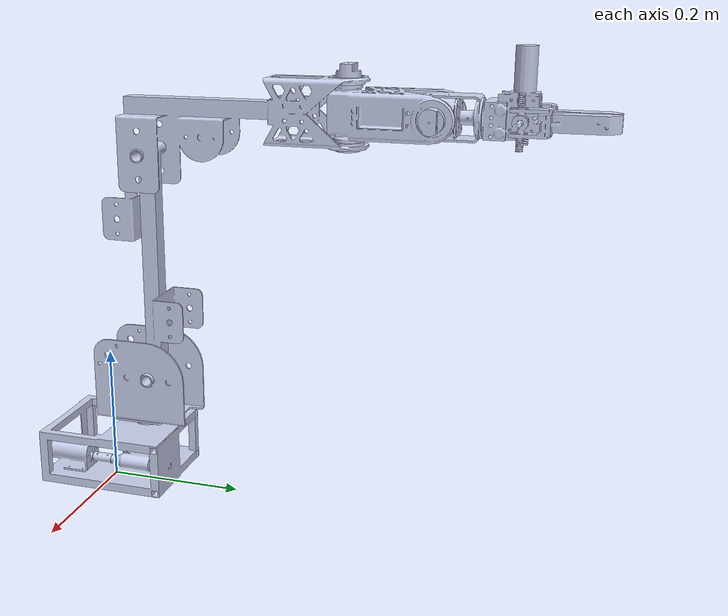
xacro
<?xml version="1.0" encoding="utf-8"?>
<robot
  name="prochesta_arm">
  <link
    name="ArmBase">
    <inertial>
      <origin
        xyz="-0.0546412131471822 0.0142569733044021 0.0105265889786102"
        rpy="0 0 0" />
      <mass
        value="0.392347184025621" />
      <inertia
        ixx="0.00037313359562078"
        ixy="-3.88508187746182E-07"
        ixz="-9.7227823468437E-06"
        iyy="0.000612254064917396"
        iyz="6.685567634577E-07"
        izz="0.000292429195752973" />
    </inertial>
    <visual>
      <origin
        xyz="0 0 0"
        rpy="0 0 0" />
      <geometry>
        <mesh
          filename="package://prochesta_arm/meshes/ArmBase.STL" />
      </geometry>
      <material
        name="">
        <color
          rgba="0.792156862745098 0.819607843137255 0.933333333333333 1" />
      </material>
    </visual>
    <collision>
      <origin
        xyz="0 0 0"
        rpy="0 0 0" />
      <geometry>
        <mesh
          filename="package://prochesta_arm/meshes/ArmBase.STL" />
      </geometry>
    </collision>
  </link>
  <link
    name="BaseShaft">
    <inertial>
      <origin
        xyz="-0.00124611489784311 -0.108184816547343 -1.18094289902615E-09"
        rpy="0 0 0" />
      <mass
        value="0.172603193441375" />
      <inertia
        ixx="0.000449963539893855"
        ixy="2.29673976828531E-06"
        ixz="4.03285265163475E-09"
        iyy="0.000436230277248471"
        iyz="-5.17320253939005E-12"
        izz="0.000511313152396509" />
    </inertial>
    <visual>
      <origin
        xyz="0 0 0"
        rpy="0 0 0" />
      <geometry>
        <mesh
          filename="package://prochesta_arm/meshes/BaseShaft.STL" />
      </geometry>
      <material
        name="">
        <color
          rgba="0.792156862745098 0.819607843137255 0.933333333333333 1" />
      </material>
    </visual>
    <collision>
      <origin
        xyz="0 0 0"
        rpy="0 0 0" />
      <geometry>
        <mesh
          filename="package://prochesta_arm/meshes/BaseShaft.STL" />
      </geometry>
    </collision>
  </link>
  <joint
    name="ArmBase__BaseShaft"
    type="revolute">
    <origin
      xyz="-0.075617 0.021609 0"
      rpy="-1.5708 0 -1.5708" />
    <parent
      link="ArmBase" />
    <child
      link="BaseShaft" />
    <axis
      xyz="0 1 0" />
    <limit
      lower="-3.1416"
      upper="3.1416"
      effort="1000"
      velocity="50" />
  </joint>
  <link
    name="Shoulder">
    <inertial>
      <origin
        xyz="0.00251674474561527 0.170121527752926 0.00159696012847385"
        rpy="0 0 0" />
      <mass
        value="0.100791466963889" />
      <inertia
        ixx="0.000469966041530564"
        ixy="-5.89764046954074E-06"
        ixz="5.65207828543954E-09"
        iyy="7.13384967018999E-05"
        iyz="-3.44218965703515E-07"
        izz="0.000512104689605307" />
    </inertial>
    <visual>
      <origin
        xyz="0 0 0"
        rpy="0 0 0" />
      <geometry>
        <mesh
          filename="package://prochesta_arm/meshes/Shoulder.STL" />
      </geometry>
      <material
        name="">
        <color
          rgba="0.792156862745098 0.819607843137255 0.933333333333333 1" />
      </material>
    </visual>
    <collision>
      <origin
        xyz="0 0 0"
        rpy="0 0 0" />
      <geometry>
        <mesh
          filename="package://prochesta_arm/meshes/Shoulder.STL" />
      </geometry>
    </collision>
  </link>
  <joint
    name="BaseShaft__Shoulder"
    type="revolute">
    <origin
      xyz="-0.02 -0.1456 0"
      rpy="1.5535 1.556 -1.5873" />
    <parent
      link="BaseShaft" />
    <child
      link="Shoulder" />
    <axis
      xyz="-0.99989 0.01479 0.00025546" />
    <!-- limits have been calculated manually-->
    <limit
      lower="-1"
      upper=".5"
      effort="1000"
      velocity="50" />
  </joint>
  <link
    name="Elbow">
    <inertial>
      <origin
        xyz="-4.98394797654456E-11 -3.62130138409911E-05 -0.17234820422493"
        rpy="0 0 0" />
      <mass
        value="0.155859341630008" />
      <inertia
        ixx="0.000268369583946352"
        ixy="2.061494260678E-10"
        ixz="-6.45772822678737E-11"
        iyy="0.000298530192977532"
        iyz="-4.44744351270454E-05"
        izz="0.000181542359930575" />
    </inertial>
    <visual>
      <origin
        xyz="0 0 0"
        rpy="0 0 0" />
      <geometry>
        <mesh
          filename="package://prochesta_arm/meshes/Elbow.STL" />
      </geometry>
      <material
        name="">
        <color
          rgba="0.792156862745098 0.819607843137255 0.933333333333333 1" />
      </material>
    </visual>
    <collision>
      <origin
        xyz="0 0 0"
        rpy="0 0 0" />
      <geometry>
        <mesh
          filename="package://prochesta_arm/meshes/Elbow.STL" />
      </geometry>
    </collision>
  </link>
  <joint
    name="Shoulder__Elbow"
    type="revolute">
    <origin
      xyz="0.0051765 0.34996 0.00027318"
      rpy="-2.8163 -0.00025546 3.1268" />
    <parent
      link="Shoulder" />
    <child
      link="Elbow" />
    <axis
      xyz="1 0 0" />
    <!-- limits have been calculated manually-->
    <limit
      lower="-0.5"
      upper=".7837"
      effort="1000"
      velocity="50" />
  </joint>
  <link
    name="Yaw">
    <inertial>
      <origin
        xyz="-0.00438644516368353 0.0559409791205142 -0.0570850114857289"
        rpy="0 0 0" />
      <mass
        value="0.296477336396768" />
      <inertia
        ixx="0.000492376543215998"
        ixy="-1.09052812794105E-05"
        ixz="-2.66243025248788E-05"
        iyy="0.000302345188534722"
        iyz="-2.34599297023637E-05"
        izz="0.000282182542169169" />
    </inertial>
    <visual>
      <origin
        xyz="0 0 0"
        rpy="0 0 0" />
      <geometry>
        <mesh
          filename="package://prochesta_arm/meshes/Yaw.STL" />
      </geometry>
      <material
        name="">
        <color
          rgba="0.792156862745098 0.819607843137255 0.933333333333333 1" />
      </material>
    </visual>
    <collision>
      <origin
        xyz="0 0 0"
        rpy="0 0 0" />
      <geometry>
        <mesh
          filename="package://prochesta_arm/meshes/Yaw.STL" />
      </geometry>
    </collision>
  </link>
  <joint
    name="Elbow__Yaw"
    type="revolute">
    <origin
      xyz="0 -0.098331 -0.29083"
      rpy="-0.0016492 -0.098555 0.033437" />
    <parent
      link="Elbow" />
    <child
      link="Yaw" />
    <axis
      xyz="0 0.94732 -0.3203" />
    <!-- limits have been calculated manually-->
    <limit
      lower="-1.5708"
      upper="1.5708"
      effort="1000"
      velocity="50" />
  </joint>
  <link
    name="Pitch">
    <inertial>
      <origin
        xyz="0.00193637684331768 -0.00113094288383903 -0.00473550556070457"
        rpy="0 0 0" />
      <mass
        value="0.245672351084059" />
      <inertia
        ixx="0.000112445414870033"
        ixy="3.7801113676169E-06"
        ixz="1.13310562352918E-05"
        iyy="0.000222075669730552"
        iyz="8.19497975087401E-07"
        izz="0.000225909542391733" />
    </inertial>
    <visual>
      <origin
        xyz="0 0 0"
        rpy="0 0 0" />
      <geometry>
        <mesh
          filename="package://prochesta_arm/meshes/Pitch.STL" />
      </geometry>
      <material
        name="">
        <color
          rgba="0.792156862745098 0.819607843137255 0.933333333333333 1" />
      </material>
    </visual>
    <collision>
      <origin
        xyz="0 0 0"
        rpy="0 0 0" />
      <geometry>
        <mesh
          filename="package://prochesta_arm/meshes/Pitch.STL" />
      </geometry>
    </collision>
  </link>
  <joint
    name="Yaw__Pitch"
    type="revolute">
    <origin
      xyz="-0.013295 0.024778 -0.14277"
      rpy="-0.095533 0.0036424 0.0092858" />
    <parent
      link="Yaw" />
    <child
      link="Pitch" />
    <axis
      xyz="0.99459 -0.033268 -0.098395" />
    <!-- limits have been calculated manually-->
    <limit
      lower="-1.5708"
      upper="1.5708"
      effort="1000"
      velocity="50" />
  </joint>
  <link
    name="Roll">
    <inertial>
      <origin
        xyz="0.013346395763443 0.026611833443925 0.0965457711475227"
        rpy="0 0 0" />
      <mass
        value="0.219051002803153" />
      <inertia
        ixx="0.000155851657200548"
        ixy="-1.61881929035119E-05"
        ixz="1.50471506253359E-05"
        iyy="0.000101493190927247"
        iyz="4.64669877102981E-05"
        izz="0.000174715266607372" />
    </inertial>
    <visual>
      <origin
        xyz="0 0 0"
        rpy="0 0 0" />
      <geometry>
        <mesh
          filename="package://prochesta_arm/meshes/Roll.STL" />
      </geometry>
      <material
        name="">
        <color
          rgba="0.792156862745098 0.819607843137255 0.933333333333333 1" />
      </material>
    </visual>
    <collision>
      <origin
        xyz="0 0 0"
        rpy="0 0 0" />
      <geometry>
        <mesh
          filename="package://prochesta_arm/meshes/Roll.STL" />
      </geometry>
    </collision>
  </link>
  <joint
    name="Pitch__Roll"
    type="revolute">
    <origin
      xyz="0 0 0"
      rpy="-2.9699 0.21413 -0.25831" />
    <parent
      link="Pitch" />
    <child
      link="Roll" />
    <axis
      xyz="0.16462 0.40474 0.89949" />
    <!-- limits have been calculated manually-->
    <limit
      lower="-3.1416"
      upper="3.1416"
      effort="1000"
      velocity="50" />
  </joint>
  <link
    name="LeftClaw">
    <inertial>
      <origin
        xyz="0.0160548042850929 0.363052679901909 -0.277299510990579"
        rpy="0 0 0" />
      <mass
        value="0.0710508103277403" />
      <inertia
        ixx="6.33292286188025E-05"
        ixy="-7.37244945176046E-06"
        ixz="-1.6248611953797E-05"
        iyy="5.934165926219E-05"
        iyz="-1.6824179025353E-05"
        izz="2.45890867032075E-05" />
    </inertial>
    <visual>
      <origin
        xyz="0 0 0"
        rpy="0 0 0" />
      <geometry>
        <mesh
          filename="package://prochesta_arm/meshes/LeftClaw.STL" />
      </geometry>
      <material
        name="">
        <color
          rgba="0.792156862745098 0.819607843137255 0.933333333333333 1" />
      </material>
    </visual>
    <collision>
      <origin
        xyz="0 0 0"
        rpy="0 0 0" />
      <geometry>
        <mesh
          filename="package://prochesta_arm/meshes/LeftClaw.STL" />
      </geometry>
    </collision>
  </link>
  <link
    name="RightClaw">
    <inertial>
      <origin
        xyz="0.0160548042897368 0.363052680008611 -0.277299511621476"
        rpy="0 0 0" />
      <mass
        value="0.0710508080215541" />
      <inertia
        ixx="6.33292264052498E-05"
        ixy="-7.37244969866602E-06"
        ixz="-1.62486114309369E-05"
        iyy="5.9341657110105E-05"
        iyz="-1.68241784848982E-05"
        izz="2.45890872002616E-05" />
    </inertial>
    <visual>
      <origin
        xyz="0 0 0"
        rpy="0 0 0" />
      <geometry>
        <mesh
          filename="package://prochesta_arm/meshes/RightClaw.STL" />
      </geometry>
      <material
        name="">
        <color
          rgba="0.792156862745098 0.819607843137255 0.933333333333333 1" />
      </material>
    </visual>
    <collision>
      <origin
        xyz="0 0 0"
        rpy="0 0 0" />
      <geometry>
        <mesh
          filename="package://prochesta_arm/meshes/RightClaw.STL" />
      </geometry>
    </collision>
  </link>
  <joint
    name="Joint_LeftClaw"
    type="prismatic">
    <origin
      xyz="-0.0088606 -0.28846 0.43314"
      rpy="0 0 0" />
    <parent
      link="Roll" />
    <child
      link="LeftClaw" />
    <axis
      xyz="-0.96885 0.23743 0.070474" />
    <limit
      lower="0"
      upper="0.021"
      effort="1000"
      velocity="50" />
  </joint>
  <joint
    name="Joint_RightClaw"
    type="prismatic">
    <origin
      xyz="0.099182 0.50791 0.05503"
      rpy="0.86688 -0.30065 3.0016" />
    <parent
      link="Roll" />
    <child
      link="RightClaw" />
    <axis
      xyz="0.96885 -0.23743 -0.070474" />
    <limit
      lower="-0.021"
      upper="0"
      effort="1000"
      velocity="50" />
  </joint>
</robot>
